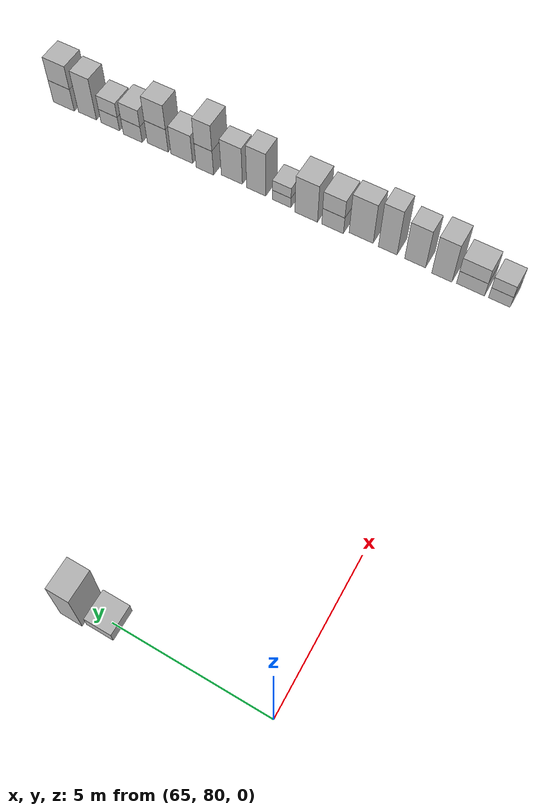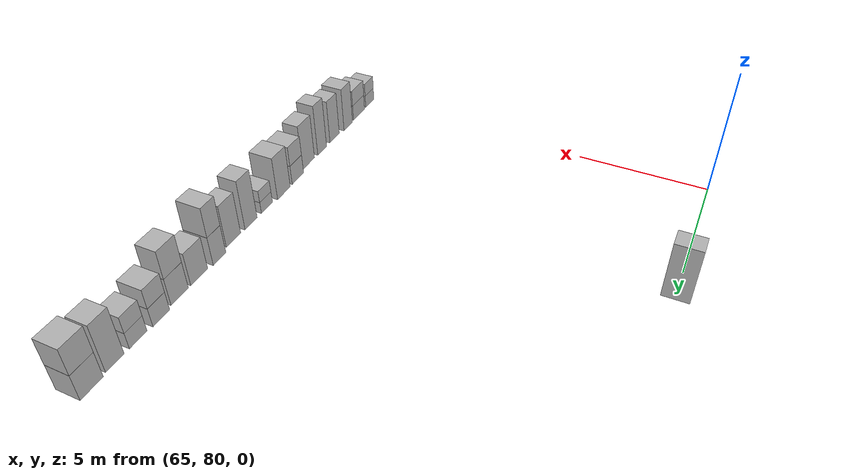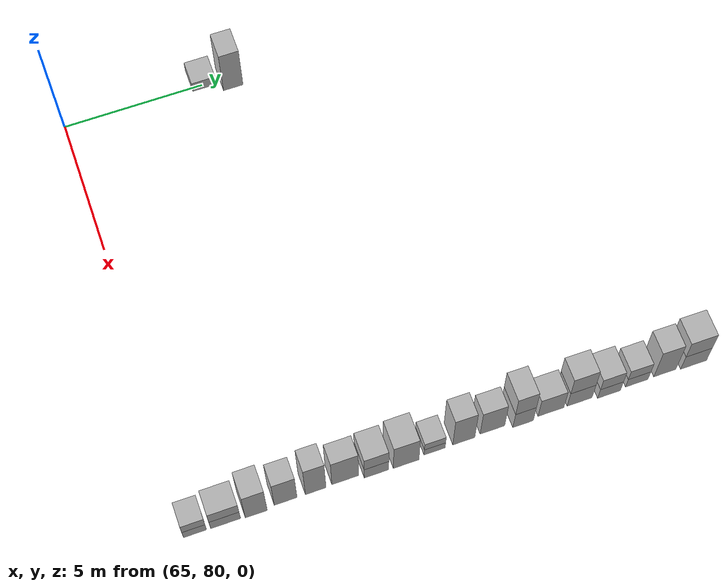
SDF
<sdf version="1.5">
 <world name="default">
  <model name="ground_plane">
   <static>true</static>
   <link name="link">
    <collision name="collision">
     <geometry><plane><normal>0 0 1</normal><size>250 250</size></plane></geometry>
     <surface><friction><ode><mu>1</mu><mu2>1</mu2></ode></friction></surface>
    </collision>
    <visual name="grass">
     <cast_shadows>false</cast_shadows>
     <geometry><mesh><uri>file://grass_plane/meshes/grass_plane.dae</uri></mesh></geometry>
    </visual>
   </link>
  </model>
  <model name="Cardboard_box_top_680">
   <link name="link_0">
    <pose>65 85 0.51477886674 0 0 0</pose>
    <inertial>
     <mass>1</mass>
     <inertia>
      <ixx>0.166667</ixx>
      <ixy>0</ixy>
      <ixz>0</ixz>
      <iyy>0.166667</iyy>
      <iyz>0</iyz>
      <izz>0.166667</izz>
     </inertia>
    </inertial>
    <collision name="collision">
     <geometry>
      <mesh>
       <uri>model://Cardboard_box/meshes/cardboard_box.dae</uri>
       <scale>2.24664343238 2.1493923385 1.28694716685</scale>
      </mesh>
     </geometry>
    </collision>
    <visual name="visual">
     <geometry>
      <mesh>
       <uri>model://Cardboard_box/meshes/cardboard_box.dae</uri>
       <scale>2.24664343238 2.1493923385 1.28694716685</scale>
      </mesh>
     </geometry>
    </visual>
   </link>
   <static>1</static>
  </model>
  <model name="Cardboard_box_681">
   <link name="link_0">
    <pose>65 86 0 0 0 0</pose>
    <inertial>
     <mass>1</mass>
     <inertia>
      <ixx>0.166667</ixx>
      <ixy>0</ixy>
      <ixz>0</ixz>
      <iyy>0.166667</iyy>
      <iyz>0</iyz>
      <izz>0.166667</izz>
     </inertia>
    </inertial>
    <collision name="collision">
     <geometry>
      <mesh>
       <uri>model://Cardboard_box/meshes/cardboard_box.dae</uri>
       <scale>2.38747018998 1.80520041236 5.65136614298</scale>
      </mesh>
     </geometry>
    </collision>
    <visual name="visual">
     <geometry>
      <mesh>
       <uri>model://Cardboard_box/meshes/cardboard_box.dae</uri>
       <scale>2.38747018998 1.80520041236 5.65136614298</scale>
      </mesh>
     </geometry>
    </visual>
   </link>
   <static>1</static>
  </model>
  <model name="Cardboard_box_682">
   <link name="link_0">
    <pose>80 80 0 0 0 0</pose>
    <inertial>
     <mass>1</mass>
     <inertia>
      <ixx>0.166667</ixx>
      <ixy>0</ixy>
      <ixz>0</ixz>
      <iyy>0.166667</iyy>
      <iyz>0</iyz>
      <izz>0.166667</izz>
     </inertia>
    </inertial>
    <collision name="collision">
     <geometry>
      <mesh>
       <uri>model://Cardboard_box/meshes/cardboard_box.dae</uri>
       <scale>2.08097476055 1.89715904141 1.45902585243</scale>
      </mesh>
     </geometry>
    </collision>
    <visual name="visual">
     <geometry>
      <mesh>
       <uri>model://Cardboard_box/meshes/cardboard_box.dae</uri>
       <scale>2.08097476055 1.89715904141 1.45902585243</scale>
      </mesh>
     </geometry>
    </visual>
   </link>
   <static>1</static>
  </model>
  <model name="Cardboard_box_top_682">
   <link name="link_0">
    <pose>80 80 0.583610340972 0 0 0</pose>
    <inertial>
     <mass>1</mass>
     <inertia>
      <ixx>0.166667</ixx>
      <ixy>0</ixy>
      <ixz>0</ixz>
      <iyy>0.166667</iyy>
      <iyz>0</iyz>
      <izz>0.166667</izz>
     </inertia>
    </inertial>
    <collision name="collision">
     <geometry>
      <mesh>
       <uri>model://Cardboard_box/meshes/cardboard_box.dae</uri>
       <scale>2.08097476055 1.89715904141 1.45902585243</scale>
      </mesh>
     </geometry>
    </collision>
    <visual name="visual">
     <geometry>
      <mesh>
       <uri>model://Cardboard_box/meshes/cardboard_box.dae</uri>
       <scale>2.08097476055 1.89715904141 1.45902585243</scale>
      </mesh>
     </geometry>
    </visual>
   </link>
   <static>1</static>
  </model>
  <model name="Cardboard_box_683">
   <link name="link_0">
    <pose>80 81 0 0 0 0</pose>
    <inertial>
     <mass>1</mass>
     <inertia>
      <ixx>0.166667</ixx>
      <ixy>0</ixy>
      <ixz>0</ixz>
      <iyy>0.166667</iyy>
      <iyz>0</iyz>
      <izz>0.166667</izz>
     </inertia>
    </inertial>
    <collision name="collision">
     <geometry>
      <mesh>
       <uri>model://Cardboard_box/meshes/cardboard_box.dae</uri>
       <scale>2.12923338973 2.48224267364 1.78283410753</scale>
      </mesh>
     </geometry>
    </collision>
    <visual name="visual">
     <geometry>
      <mesh>
       <uri>model://Cardboard_box/meshes/cardboard_box.dae</uri>
       <scale>2.12923338973 2.48224267364 1.78283410753</scale>
      </mesh>
     </geometry>
    </visual>
   </link>
   <static>1</static>
  </model>
  <model name="Cardboard_box_top_683">
   <link name="link_0">
    <pose>80 81 0.71313364301 0 0 0</pose>
    <inertial>
     <mass>1</mass>
     <inertia>
      <ixx>0.166667</ixx>
      <ixy>0</ixy>
      <ixz>0</ixz>
      <iyy>0.166667</iyy>
      <iyz>0</iyz>
      <izz>0.166667</izz>
     </inertia>
    </inertial>
    <collision name="collision">
     <geometry>
      <mesh>
       <uri>model://Cardboard_box/meshes/cardboard_box.dae</uri>
       <scale>2.12923338973 2.48224267364 1.78283410753</scale>
      </mesh>
     </geometry>
    </collision>
    <visual name="visual">
     <geometry>
      <mesh>
       <uri>model://Cardboard_box/meshes/cardboard_box.dae</uri>
       <scale>2.12923338973 2.48224267364 1.78283410753</scale>
      </mesh>
     </geometry>
    </visual>
   </link>
   <static>1</static>
  </model>
  <model name="Cardboard_box_684">
   <link name="link_0">
    <pose>80 82 0 0 0 0</pose>
    <inertial>
     <mass>1</mass>
     <inertia>
      <ixx>0.166667</ixx>
      <ixy>0</ixy>
      <ixz>0</ixz>
      <iyy>0.166667</iyy>
      <iyz>0</iyz>
      <izz>0.166667</izz>
     </inertia>
    </inertial>
    <collision name="collision">
     <geometry>
      <mesh>
       <uri>model://Cardboard_box/meshes/cardboard_box.dae</uri>
       <scale>2.29414045489 1.82092465136 5.00909461762</scale>
      </mesh>
     </geometry>
    </collision>
    <visual name="visual">
     <geometry>
      <mesh>
       <uri>model://Cardboard_box/meshes/cardboard_box.dae</uri>
       <scale>2.29414045489 1.82092465136 5.00909461762</scale>
      </mesh>
     </geometry>
    </visual>
   </link>
   <static>1</static>
  </model>
  <model name="Cardboard_box_685">
   <link name="link_0">
    <pose>80 83 0 0 0 0</pose>
    <inertial>
     <mass>1</mass>
     <inertia>
      <ixx>0.166667</ixx>
      <ixy>0</ixy>
      <ixz>0</ixz>
      <iyy>0.166667</iyy>
      <iyz>0</iyz>
      <izz>0.166667</izz>
     </inertia>
    </inertial>
    <collision name="collision">
     <geometry>
      <mesh>
       <uri>model://Cardboard_box/meshes/cardboard_box.dae</uri>
       <scale>1.87102735953 1.90716316111 4.92719394649</scale>
      </mesh>
     </geometry>
    </collision>
    <visual name="visual">
     <geometry>
      <mesh>
       <uri>model://Cardboard_box/meshes/cardboard_box.dae</uri>
       <scale>1.87102735953 1.90716316111 4.92719394649</scale>
      </mesh>
     </geometry>
    </visual>
   </link>
   <static>1</static>
  </model>
  <model name="Cardboard_box_686">
   <link name="link_0">
    <pose>80 84 0 0 0 0</pose>
    <inertial>
     <mass>1</mass>
     <inertia>
      <ixx>0.166667</ixx>
      <ixy>0</ixy>
      <ixz>0</ixz>
      <iyy>0.166667</iyy>
      <iyz>0</iyz>
      <izz>0.166667</izz>
     </inertia>
    </inertial>
    <collision name="collision">
     <geometry>
      <mesh>
       <uri>model://Cardboard_box/meshes/cardboard_box.dae</uri>
       <scale>1.87667717653 1.73336524129 5.80591850022</scale>
      </mesh>
     </geometry>
    </collision>
    <visual name="visual">
     <geometry>
      <mesh>
       <uri>model://Cardboard_box/meshes/cardboard_box.dae</uri>
       <scale>1.87667717653 1.73336524129 5.80591850022</scale>
      </mesh>
     </geometry>
    </visual>
   </link>
   <static>1</static>
  </model>
  <model name="Cardboard_box_687">
   <link name="link_0">
    <pose>80 85 0 0 0 0</pose>
    <inertial>
     <mass>1</mass>
     <inertia>
      <ixx>0.166667</ixx>
      <ixy>0</ixy>
      <ixz>0</ixz>
      <iyy>0.166667</iyy>
      <iyz>0</iyz>
      <izz>0.166667</izz>
     </inertia>
    </inertial>
    <collision name="collision">
     <geometry>
      <mesh>
       <uri>model://Cardboard_box/meshes/cardboard_box.dae</uri>
       <scale>1.72379977284 2.26777200973 5.09126731523</scale>
      </mesh>
     </geometry>
    </collision>
    <visual name="visual">
     <geometry>
      <mesh>
       <uri>model://Cardboard_box/meshes/cardboard_box.dae</uri>
       <scale>1.72379977284 2.26777200973 5.09126731523</scale>
      </mesh>
     </geometry>
    </visual>
   </link>
   <static>1</static>
  </model>
  <model name="Cardboard_box_688">
   <link name="link_0">
    <pose>80 86 0 0 0 0</pose>
    <inertial>
     <mass>1</mass>
     <inertia>
      <ixx>0.166667</ixx>
      <ixy>0</ixy>
      <ixz>0</ixz>
      <iyy>0.166667</iyy>
      <iyz>0</iyz>
      <izz>0.166667</izz>
     </inertia>
    </inertial>
    <collision name="collision">
     <geometry>
      <mesh>
       <uri>model://Cardboard_box/meshes/cardboard_box.dae</uri>
       <scale>2.42231947395 2.06662412259 2.14936889587</scale>
      </mesh>
     </geometry>
    </collision>
    <visual name="visual">
     <geometry>
      <mesh>
       <uri>model://Cardboard_box/meshes/cardboard_box.dae</uri>
       <scale>2.42231947395 2.06662412259 2.14936889587</scale>
      </mesh>
     </geometry>
    </visual>
   </link>
   <static>1</static>
  </model>
  <model name="Cardboard_box_top_688">
   <link name="link_0">
    <pose>80 86 0.859747558347 0 0 0</pose>
    <inertial>
     <mass>1</mass>
     <inertia>
      <ixx>0.166667</ixx>
      <ixy>0</ixy>
      <ixz>0</ixz>
      <iyy>0.166667</iyy>
      <iyz>0</iyz>
      <izz>0.166667</izz>
     </inertia>
    </inertial>
    <collision name="collision">
     <geometry>
      <mesh>
       <uri>model://Cardboard_box/meshes/cardboard_box.dae</uri>
       <scale>2.42231947395 2.06662412259 2.14936889587</scale>
      </mesh>
     </geometry>
    </collision>
    <visual name="visual">
     <geometry>
      <mesh>
       <uri>model://Cardboard_box/meshes/cardboard_box.dae</uri>
       <scale>2.42231947395 2.06662412259 2.14936889587</scale>
      </mesh>
     </geometry>
    </visual>
   </link>
   <static>1</static>
  </model>
  <model name="Cardboard_box_689">
   <link name="link_0">
    <pose>80 87 0 0 0 0</pose>
    <inertial>
     <mass>1</mass>
     <inertia>
      <ixx>0.166667</ixx>
      <ixy>0</ixy>
      <ixz>0</ixz>
      <iyy>0.166667</iyy>
      <iyz>0</iyz>
      <izz>0.166667</izz>
     </inertia>
    </inertial>
    <collision name="collision">
     <geometry>
      <mesh>
       <uri>model://Cardboard_box/meshes/cardboard_box.dae</uri>
       <scale>2.47801957059 2.18726992922 4.74606684247</scale>
      </mesh>
     </geometry>
    </collision>
    <visual name="visual">
     <geometry>
      <mesh>
       <uri>model://Cardboard_box/meshes/cardboard_box.dae</uri>
       <scale>2.47801957059 2.18726992922 4.74606684247</scale>
      </mesh>
     </geometry>
    </visual>
   </link>
   <static>1</static>
  </model>
  <model name="Cardboard_box_690">
   <link name="link_0">
    <pose>80 88 0 0 0 0</pose>
    <inertial>
     <mass>1</mass>
     <inertia>
      <ixx>0.166667</ixx>
      <ixy>0</ixy>
      <ixz>0</ixz>
      <iyy>0.166667</iyy>
      <iyz>0</iyz>
      <izz>0.166667</izz>
     </inertia>
    </inertial>
    <collision name="collision">
     <geometry>
      <mesh>
       <uri>model://Cardboard_box/meshes/cardboard_box.dae</uri>
       <scale>2.0169169343 1.81253222478 1.27581495216</scale>
      </mesh>
     </geometry>
    </collision>
    <visual name="visual">
     <geometry>
      <mesh>
       <uri>model://Cardboard_box/meshes/cardboard_box.dae</uri>
       <scale>2.0169169343 1.81253222478 1.27581495216</scale>
      </mesh>
     </geometry>
    </visual>
   </link>
   <static>1</static>
  </model>
  <model name="Cardboard_box_top_690">
   <link name="link_0">
    <pose>80 88 0.510325980864 0 0 0</pose>
    <inertial>
     <mass>1</mass>
     <inertia>
      <ixx>0.166667</ixx>
      <ixy>0</ixy>
      <ixz>0</ixz>
      <iyy>0.166667</iyy>
      <iyz>0</iyz>
      <izz>0.166667</izz>
     </inertia>
    </inertial>
    <collision name="collision">
     <geometry>
      <mesh>
       <uri>model://Cardboard_box/meshes/cardboard_box.dae</uri>
       <scale>2.0169169343 1.81253222478 1.27581495216</scale>
      </mesh>
     </geometry>
    </collision>
    <visual name="visual">
     <geometry>
      <mesh>
       <uri>model://Cardboard_box/meshes/cardboard_box.dae</uri>
       <scale>2.0169169343 1.81253222478 1.27581495216</scale>
      </mesh>
     </geometry>
    </visual>
   </link>
   <static>1</static>
  </model>
  <model name="Cardboard_box_691">
   <link name="link_0">
    <pose>80 89 0 0 0 0</pose>
    <inertial>
     <mass>1</mass>
     <inertia>
      <ixx>0.166667</ixx>
      <ixy>0</ixy>
      <ixz>0</ixz>
      <iyy>0.166667</iyy>
      <iyz>0</iyz>
      <izz>0.166667</izz>
     </inertia>
    </inertial>
    <collision name="collision">
     <geometry>
      <mesh>
       <uri>model://Cardboard_box/meshes/cardboard_box.dae</uri>
       <scale>1.98225460142 1.89696801535 5.46092420617</scale>
      </mesh>
     </geometry>
    </collision>
    <visual name="visual">
     <geometry>
      <mesh>
       <uri>model://Cardboard_box/meshes/cardboard_box.dae</uri>
       <scale>1.98225460142 1.89696801535 5.46092420617</scale>
      </mesh>
     </geometry>
    </visual>
   </link>
   <static>1</static>
  </model>
  <model name="Cardboard_box_692">
   <link name="link_0">
    <pose>80 90 0 0 0 0</pose>
    <inertial>
     <mass>1</mass>
     <inertia>
      <ixx>0.166667</ixx>
      <ixy>0</ixy>
      <ixz>0</ixz>
      <iyy>0.166667</iyy>
      <iyz>0</iyz>
      <izz>0.166667</izz>
     </inertia>
    </inertial>
    <collision name="collision">
     <geometry>
      <mesh>
       <uri>model://Cardboard_box/meshes/cardboard_box.dae</uri>
       <scale>1.74778708043 2.12708804052 4.62328735715</scale>
      </mesh>
     </geometry>
    </collision>
    <visual name="visual">
     <geometry>
      <mesh>
       <uri>model://Cardboard_box/meshes/cardboard_box.dae</uri>
       <scale>1.74778708043 2.12708804052 4.62328735715</scale>
      </mesh>
     </geometry>
    </visual>
   </link>
   <static>1</static>
  </model>
  <model name="Cardboard_box_693">
   <link name="link_0">
    <pose>80 91 0 0 0 0</pose>
    <inertial>
     <mass>1</mass>
     <inertia>
      <ixx>0.166667</ixx>
      <ixy>0</ixy>
      <ixz>0</ixz>
      <iyy>0.166667</iyy>
      <iyz>0</iyz>
      <izz>0.166667</izz>
     </inertia>
    </inertial>
    <collision name="collision">
     <geometry>
      <mesh>
       <uri>model://Cardboard_box/meshes/cardboard_box.dae</uri>
       <scale>2.48406361477 1.78401804138 3.13079613524</scale>
      </mesh>
     </geometry>
    </collision>
    <visual name="visual">
     <geometry>
      <mesh>
       <uri>model://Cardboard_box/meshes/cardboard_box.dae</uri>
       <scale>2.48406361477 1.78401804138 3.13079613524</scale>
      </mesh>
     </geometry>
    </visual>
   </link>
   <static>1</static>
  </model>
  <model name="Cardboard_box_top_693">
   <link name="link_0">
    <pose>80 91 1.25231845409 0 0 0</pose>
    <inertial>
     <mass>1</mass>
     <inertia>
      <ixx>0.166667</ixx>
      <ixy>0</ixy>
      <ixz>0</ixz>
      <iyy>0.166667</iyy>
      <iyz>0</iyz>
      <izz>0.166667</izz>
     </inertia>
    </inertial>
    <collision name="collision">
     <geometry>
      <mesh>
       <uri>model://Cardboard_box/meshes/cardboard_box.dae</uri>
       <scale>2.48406361477 1.78401804138 3.13079613524</scale>
      </mesh>
     </geometry>
    </collision>
    <visual name="visual">
     <geometry>
      <mesh>
       <uri>model://Cardboard_box/meshes/cardboard_box.dae</uri>
       <scale>2.48406361477 1.78401804138 3.13079613524</scale>
      </mesh>
     </geometry>
    </visual>
   </link>
   <static>1</static>
  </model>
  <model name="Cardboard_box_694">
   <link name="link_0">
    <pose>80 92 0 0 0 0</pose>
    <inertial>
     <mass>1</mass>
     <inertia>
      <ixx>0.166667</ixx>
      <ixy>0</ixy>
      <ixz>0</ixz>
      <iyy>0.166667</iyy>
      <iyz>0</iyz>
      <izz>0.166667</izz>
     </inertia>
    </inertial>
    <collision name="collision">
     <geometry>
      <mesh>
       <uri>model://Cardboard_box/meshes/cardboard_box.dae</uri>
       <scale>2.0685482431 2.25921752951 3.53907140679</scale>
      </mesh>
     </geometry>
    </collision>
    <visual name="visual">
     <geometry>
      <mesh>
       <uri>model://Cardboard_box/meshes/cardboard_box.dae</uri>
       <scale>2.0685482431 2.25921752951 3.53907140679</scale>
      </mesh>
     </geometry>
    </visual>
   </link>
   <static>1</static>
  </model>
  <model name="Cardboard_box_695">
   <link name="link_0">
    <pose>80 93 0 0 0 0</pose>
    <inertial>
     <mass>1</mass>
     <inertia>
      <ixx>0.166667</ixx>
      <ixy>0</ixy>
      <ixz>0</ixz>
      <iyy>0.166667</iyy>
      <iyz>0</iyz>
      <izz>0.166667</izz>
     </inertia>
    </inertial>
    <collision name="collision">
     <geometry>
      <mesh>
       <uri>model://Cardboard_box/meshes/cardboard_box.dae</uri>
       <scale>2.03519485805 2.19092680023 2.9202048991</scale>
      </mesh>
     </geometry>
    </collision>
    <visual name="visual">
     <geometry>
      <mesh>
       <uri>model://Cardboard_box/meshes/cardboard_box.dae</uri>
       <scale>2.03519485805 2.19092680023 2.9202048991</scale>
      </mesh>
     </geometry>
    </visual>
   </link>
   <static>1</static>
  </model>
  <model name="Cardboard_box_top_695">
   <link name="link_0">
    <pose>80 93 1.16808195964 0 0 0</pose>
    <inertial>
     <mass>1</mass>
     <inertia>
      <ixx>0.166667</ixx>
      <ixy>0</ixy>
      <ixz>0</ixz>
      <iyy>0.166667</iyy>
      <iyz>0</iyz>
      <izz>0.166667</izz>
     </inertia>
    </inertial>
    <collision name="collision">
     <geometry>
      <mesh>
       <uri>model://Cardboard_box/meshes/cardboard_box.dae</uri>
       <scale>2.03519485805 2.19092680023 2.9202048991</scale>
      </mesh>
     </geometry>
    </collision>
    <visual name="visual">
     <geometry>
      <mesh>
       <uri>model://Cardboard_box/meshes/cardboard_box.dae</uri>
       <scale>2.03519485805 2.19092680023 2.9202048991</scale>
      </mesh>
     </geometry>
    </visual>
   </link>
   <static>1</static>
  </model>
  <model name="Cardboard_box_696">
   <link name="link_0">
    <pose>80 94 0 0 0 0</pose>
    <inertial>
     <mass>1</mass>
     <inertia>
      <ixx>0.166667</ixx>
      <ixy>0</ixy>
      <ixz>0</ixz>
      <iyy>0.166667</iyy>
      <iyz>0</iyz>
      <izz>0.166667</izz>
     </inertia>
    </inertial>
    <collision name="collision">
     <geometry>
      <mesh>
       <uri>model://Cardboard_box/meshes/cardboard_box.dae</uri>
       <scale>2.44258775665 2.01215705597 2.0174733336</scale>
      </mesh>
     </geometry>
    </collision>
    <visual name="visual">
     <geometry>
      <mesh>
       <uri>model://Cardboard_box/meshes/cardboard_box.dae</uri>
       <scale>2.44258775665 2.01215705597 2.0174733336</scale>
      </mesh>
     </geometry>
    </visual>
   </link>
   <static>1</static>
  </model>
  <model name="Cardboard_box_top_696">
   <link name="link_0">
    <pose>80 94 0.80698933344 0 0 0</pose>
    <inertial>
     <mass>1</mass>
     <inertia>
      <ixx>0.166667</ixx>
      <ixy>0</ixy>
      <ixz>0</ixz>
      <iyy>0.166667</iyy>
      <iyz>0</iyz>
      <izz>0.166667</izz>
     </inertia>
    </inertial>
    <collision name="collision">
     <geometry>
      <mesh>
       <uri>model://Cardboard_box/meshes/cardboard_box.dae</uri>
       <scale>2.44258775665 2.01215705597 2.0174733336</scale>
      </mesh>
     </geometry>
    </collision>
    <visual name="visual">
     <geometry>
      <mesh>
       <uri>model://Cardboard_box/meshes/cardboard_box.dae</uri>
       <scale>2.44258775665 2.01215705597 2.0174733336</scale>
      </mesh>
     </geometry>
    </visual>
   </link>
   <static>1</static>
  </model>
  <model name="Cardboard_box_697">
   <link name="link_0">
    <pose>80 95 0 0 0 0</pose>
    <inertial>
     <mass>1</mass>
     <inertia>
      <ixx>0.166667</ixx>
      <ixy>0</ixy>
      <ixz>0</ixz>
      <iyy>0.166667</iyy>
      <iyz>0</iyz>
      <izz>0.166667</izz>
     </inertia>
    </inertial>
    <collision name="collision">
     <geometry>
      <mesh>
       <uri>model://Cardboard_box/meshes/cardboard_box.dae</uri>
       <scale>2.16005104717 1.99456454043 1.72321554545</scale>
      </mesh>
     </geometry>
    </collision>
    <visual name="visual">
     <geometry>
      <mesh>
       <uri>model://Cardboard_box/meshes/cardboard_box.dae</uri>
       <scale>2.16005104717 1.99456454043 1.72321554545</scale>
      </mesh>
     </geometry>
    </visual>
   </link>
   <static>1</static>
  </model>
  <model name="Cardboard_box_top_697">
   <link name="link_0">
    <pose>80 95 0.689286218181 0 0 0</pose>
    <inertial>
     <mass>1</mass>
     <inertia>
      <ixx>0.166667</ixx>
      <ixy>0</ixy>
      <ixz>0</ixz>
      <iyy>0.166667</iyy>
      <iyz>0</iyz>
      <izz>0.166667</izz>
     </inertia>
    </inertial>
    <collision name="collision">
     <geometry>
      <mesh>
       <uri>model://Cardboard_box/meshes/cardboard_box.dae</uri>
       <scale>2.16005104717 1.99456454043 1.72321554545</scale>
      </mesh>
     </geometry>
    </collision>
    <visual name="visual">
     <geometry>
      <mesh>
       <uri>model://Cardboard_box/meshes/cardboard_box.dae</uri>
       <scale>2.16005104717 1.99456454043 1.72321554545</scale>
      </mesh>
     </geometry>
    </visual>
   </link>
   <static>1</static>
  </model>
  <model name="Cardboard_box_698">
   <link name="link_0">
    <pose>80 96 0 0 0 0</pose>
    <inertial>
     <mass>1</mass>
     <inertia>
      <ixx>0.166667</ixx>
      <ixy>0</ixy>
      <ixz>0</ixz>
      <iyy>0.166667</iyy>
      <iyz>0</iyz>
      <izz>0.166667</izz>
     </inertia>
    </inertial>
    <collision name="collision">
     <geometry>
      <mesh>
       <uri>model://Cardboard_box/meshes/cardboard_box.dae</uri>
       <scale>2.0810626445 1.97341698914 5.09125902861</scale>
      </mesh>
     </geometry>
    </collision>
    <visual name="visual">
     <geometry>
      <mesh>
       <uri>model://Cardboard_box/meshes/cardboard_box.dae</uri>
       <scale>2.0810626445 1.97341698914 5.09125902861</scale>
      </mesh>
     </geometry>
    </visual>
   </link>
   <static>1</static>
  </model>
  <model name="Cardboard_box_699">
   <link name="link_0">
    <pose>80 97 0 0 0 0</pose>
    <inertial>
     <mass>1</mass>
     <inertia>
      <ixx>0.166667</ixx>
      <ixy>0</ixy>
      <ixz>0</ixz>
      <iyy>0.166667</iyy>
      <iyz>0</iyz>
      <izz>0.166667</izz>
     </inertia>
    </inertial>
    <collision name="collision">
     <geometry>
      <mesh>
       <uri>model://Cardboard_box/meshes/cardboard_box.dae</uri>
       <scale>2.33033211718 2.32719269088 2.74773346814</scale>
      </mesh>
     </geometry>
    </collision>
    <visual name="visual">
     <geometry>
      <mesh>
       <uri>model://Cardboard_box/meshes/cardboard_box.dae</uri>
       <scale>2.33033211718 2.32719269088 2.74773346814</scale>
      </mesh>
     </geometry>
    </visual>
   </link>
   <static>1</static>
  </model>
  <model name="Cardboard_box_top_699">
   <link name="link_0">
    <pose>80 97 1.09909338725 0 0 0</pose>
    <inertial>
     <mass>1</mass>
     <inertia>
      <ixx>0.166667</ixx>
      <ixy>0</ixy>
      <ixz>0</ixz>
      <iyy>0.166667</iyy>
      <iyz>0</iyz>
      <izz>0.166667</izz>
     </inertia>
    </inertial>
    <collision name="collision">
     <geometry>
      <mesh>
       <uri>model://Cardboard_box/meshes/cardboard_box.dae</uri>
       <scale>2.33033211718 2.32719269088 2.74773346814</scale>
      </mesh>
     </geometry>
    </collision>
    <visual name="visual">
     <geometry>
      <mesh>
       <uri>model://Cardboard_box/meshes/cardboard_box.dae</uri>
       <scale>2.33033211718 2.32719269088 2.74773346814</scale>
      </mesh>
     </geometry>
    </visual>
   </link>
   <static>1</static>
  </model>
 </world>
</sdf>
